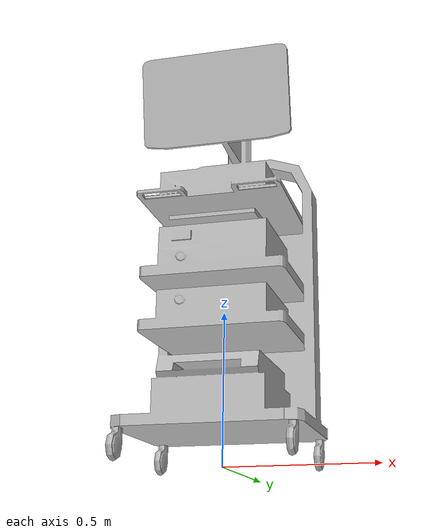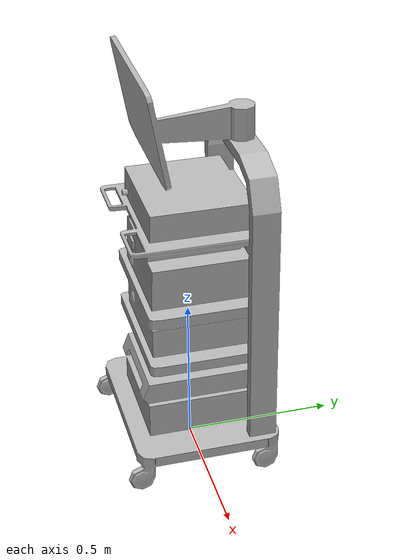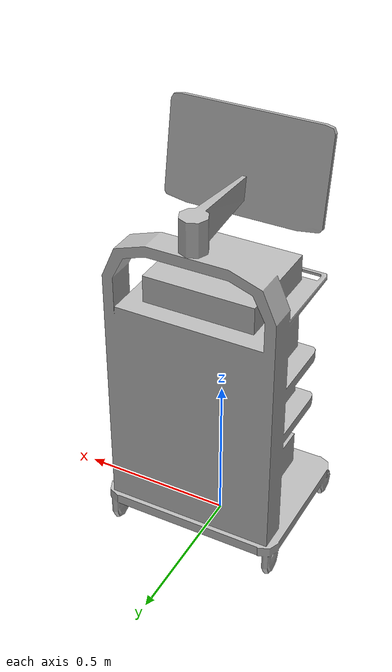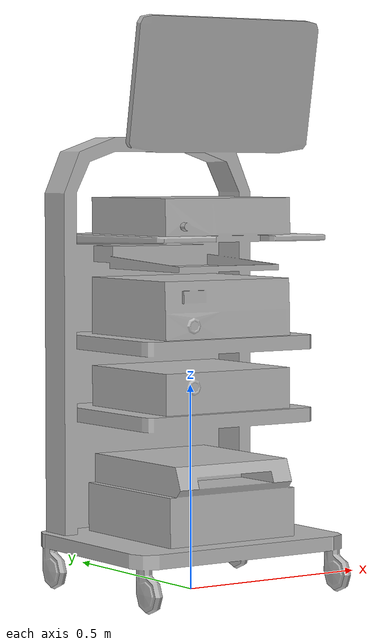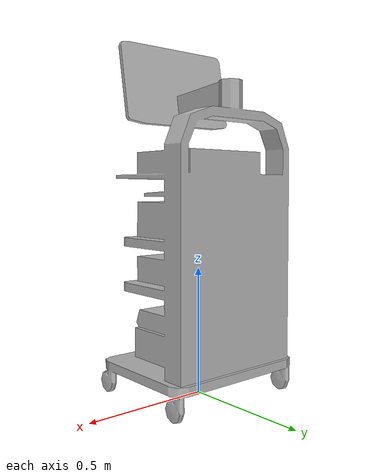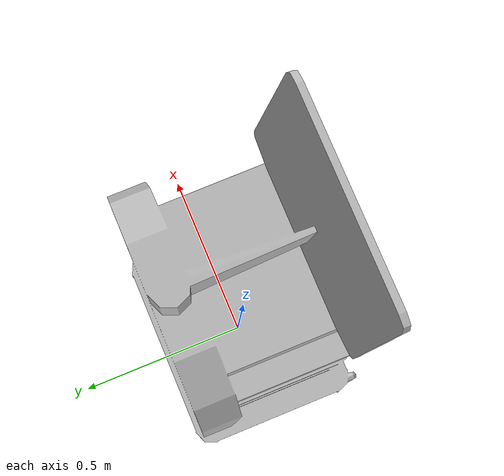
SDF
<?xml version='1.0' encoding='utf-8'?>
<sdf version="1.6">
  <model name="InstrumentCart1">
   <static>true</static>
    <link name="body">
      <pose>0 0 0 0 0 0</pose>

      <visual name="visual">
        <geometry>
          <mesh>
            <uri>model://InstrumentCart1/meshes/InstrumentCart1.obj</uri>
          </mesh>
        </geometry>
      </visual>

      <collision name="collision">
        <geometry>
          <mesh>
            <uri>model://InstrumentCart1/meshes/InstrumentCart1.obj</uri>
          </mesh>
        </geometry>
      </collision>

    </link>
  </model>
</sdf>
